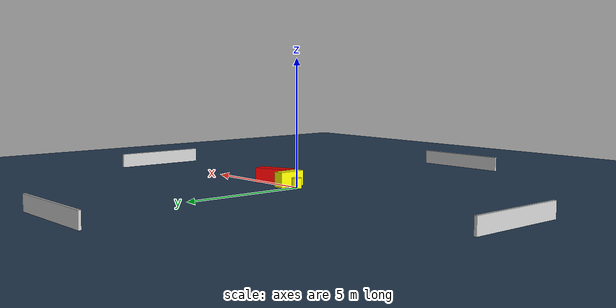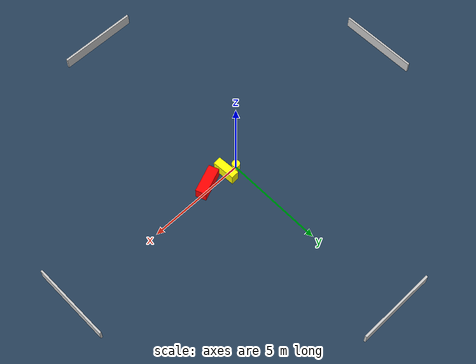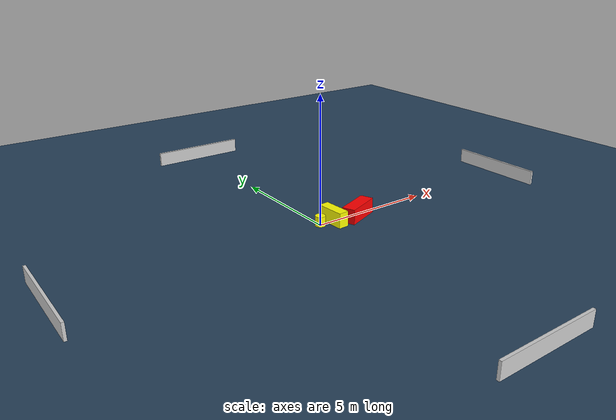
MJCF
<?xml version="1.0" ?>
<mujoco model="generated_environment">
  <option timestep="0.01" integrator="RK4" cone="elliptic"/>
  <default>
    <geom density="1"/>
  </default>
  <asset>
    <texture builtin="gradient" height="3072" name="skybox" rgb1="0.3 0.5 0.7" rgb2="0 0 0" type="skybox" width="512"/>
    <texture builtin="checker" height="300" name="groundplane" rgb1="0.2 0.3 0.4" rgb2="0.1 0.2 0.3" type="2d" width="300"/>
    <material name="groundplane" reflectance="0.2" texrepeat="5 5" texture="groundplane"/>
  </asset>
  <worldbody>
    <light dir="0 0 -1" directional="true" pos="0 0 1.5"/>
    <geom condim="3" friction="0.5 0.005 0.001" material="groundplane" name="floor" pos="0 0 0" size="0 0 0.05" type="plane"/>
    <body name="walls">
      <geom name="wall_1" condim="4" pos="-10.0 0.0 0.3" rgba="0.800000011920929 0.800000011920929 0.800000011920929 1.0" size="0.05 2.0 0.3" type="box"/>
      <geom name="wall_2" condim="4" pos="10.0 0.0 0.3" rgba="0.800000011920929 0.800000011920929 0.800000011920929 1.0" size="0.05 2.0 0.3" type="box"/>
      <geom name="wall_3" condim="4" pos="0.0 -10.0 0.3" rgba="0.800000011920929 0.800000011920929 0.800000011920929 1.0" size="2.0 0.05 0.3" type="box"/>
      <geom name="wall_4" condim="4" pos="0.0 10.0 0.3" rgba="0.800000011920929 0.800000011920929 0.800000011920929 1.0" size="2.0 0.05 0.3" type="box"/>
    </body>
    <body name="robot">
      <joint name="joint_x" type="slide" pos="0 0 0" axis="1 0 0"/>
      <joint name="joint_y" type="slide" pos="0 0 0" axis="0 1 0"/>
      <geom name="robot" type="cylinder" pos="0.0 0.0 0.2" size="0.2 0.2 0.0" mass="5.0" friction="1.0 0.005 0.0001" condim="4" rgba="1.0 1.0 0.0 1.0"/>
    </body>
    <body name="obstacle_1_movable">
      <geom name="obstacle_1_movable" condim="4" pos="0.5633240661008511 -0.08484713633144675 0.3" euler="0 0 93.76750624668115" friction="0.0 0.005 0.001" rgba="1.0 1.0 0.0 1.0" size="0.5840160089842459 0.20793610003425025 0.3" type="box" mass="0.1"/>
      <joint type="free"/>
    </body>
    <body name="obstacle_2_static">
      <geom name="obstacle_2_static" condim="4" pos="1.6298722331098643 -0.22437638913521052 0.3" euler="0 0 111.44835795316673" friction="0.0 0.005 0.001" rgba="1.0 0.0 0.0 1.0" size="0.26505486129152067 0.7320087423894532 0.3" type="box"/>
    </body>
  </worldbody>
  <actuator>
    <motor name="actuator_x" joint="joint_x" gear="1" ctrlrange="-1 1"/>
    <motor name="actuator_y" joint="joint_y" gear="1" ctrlrange="-1 1"/>
  </actuator>
</mujoco>
